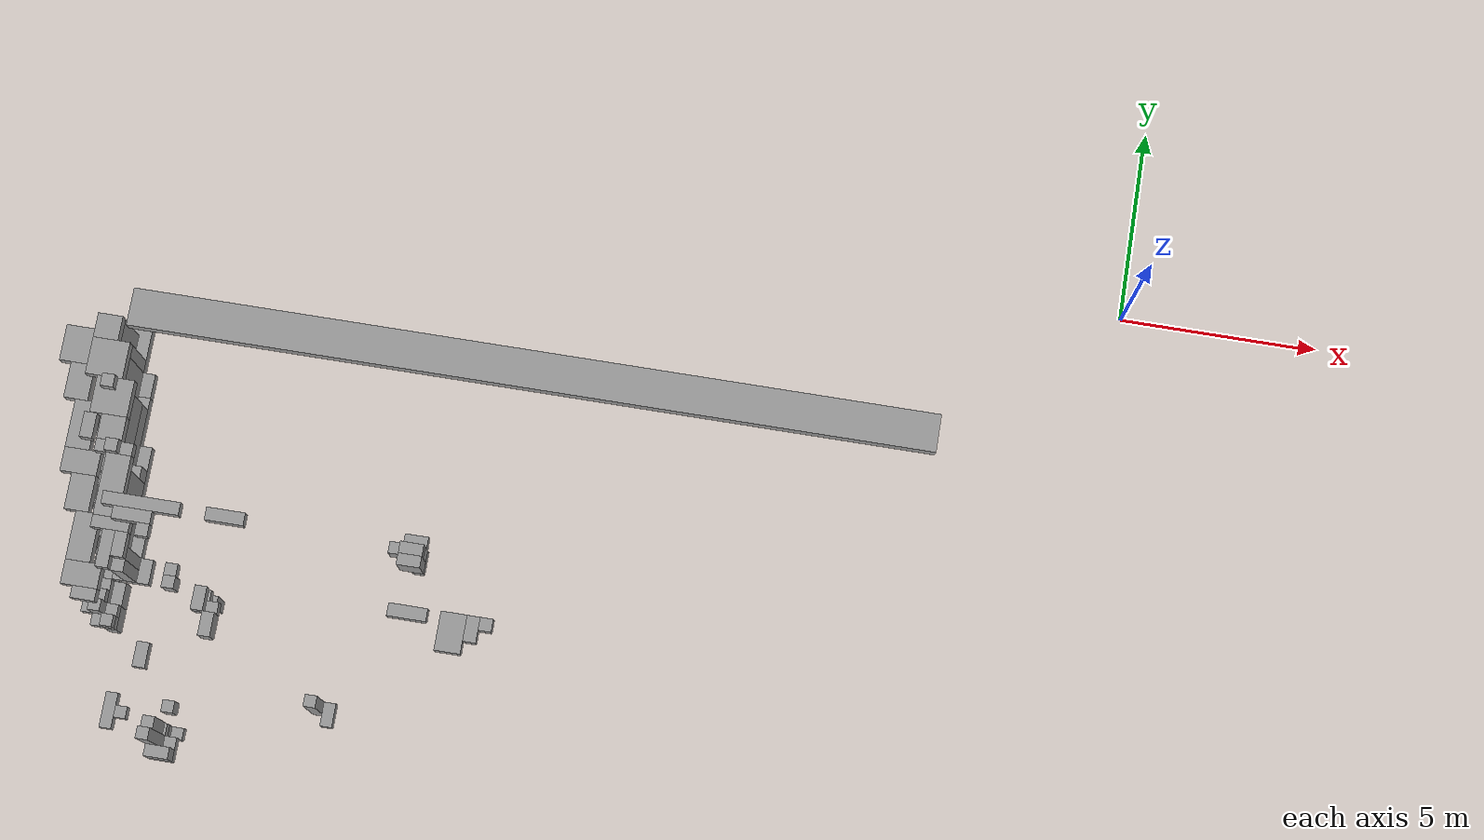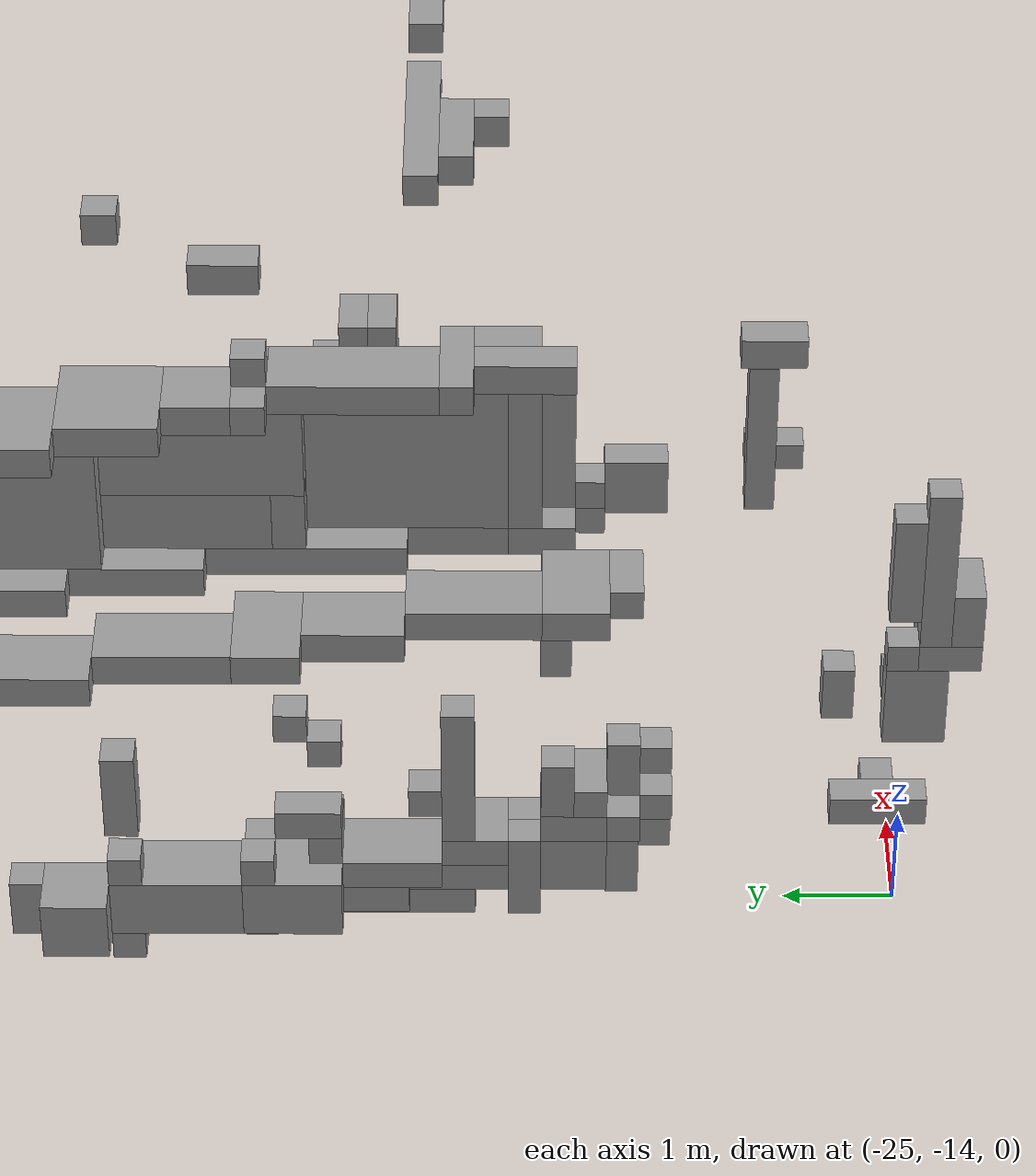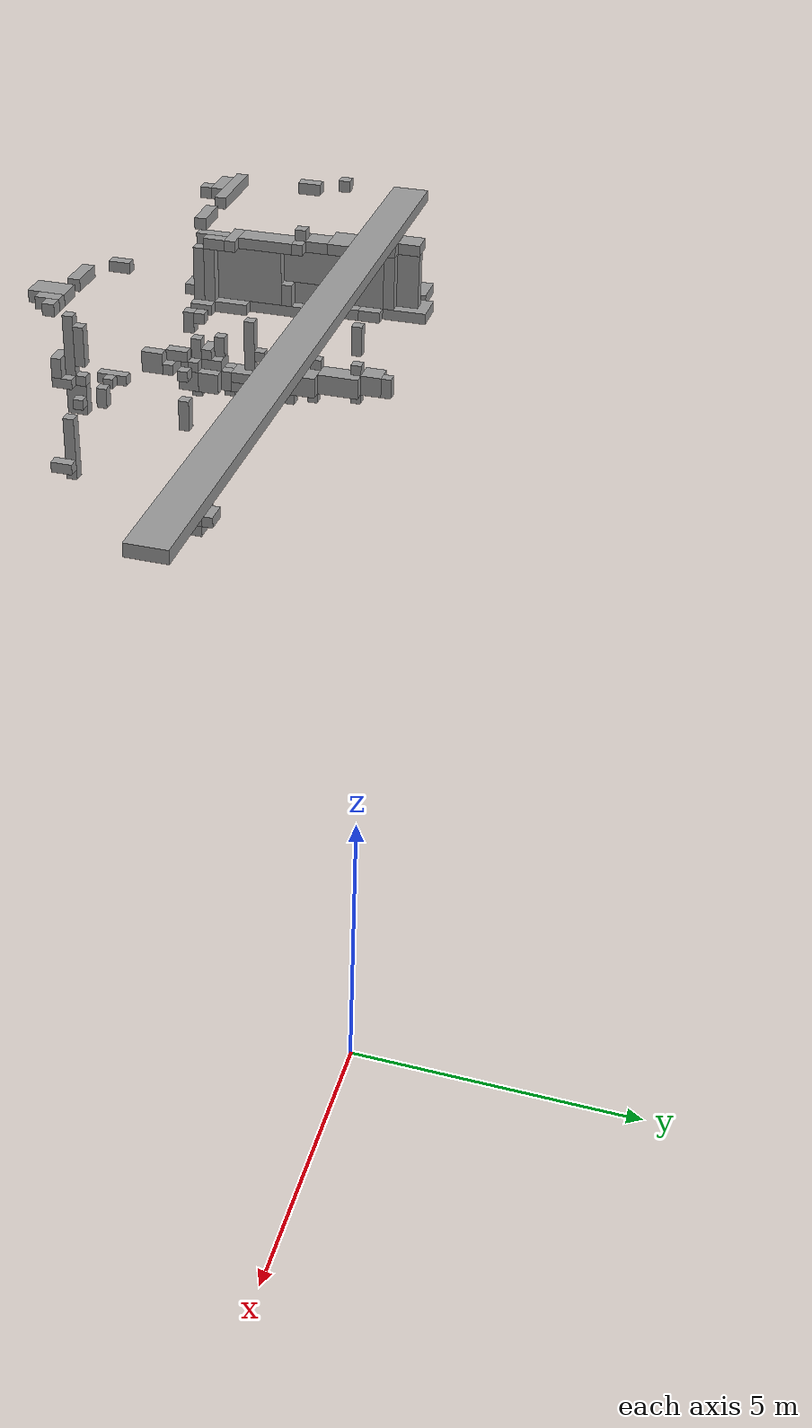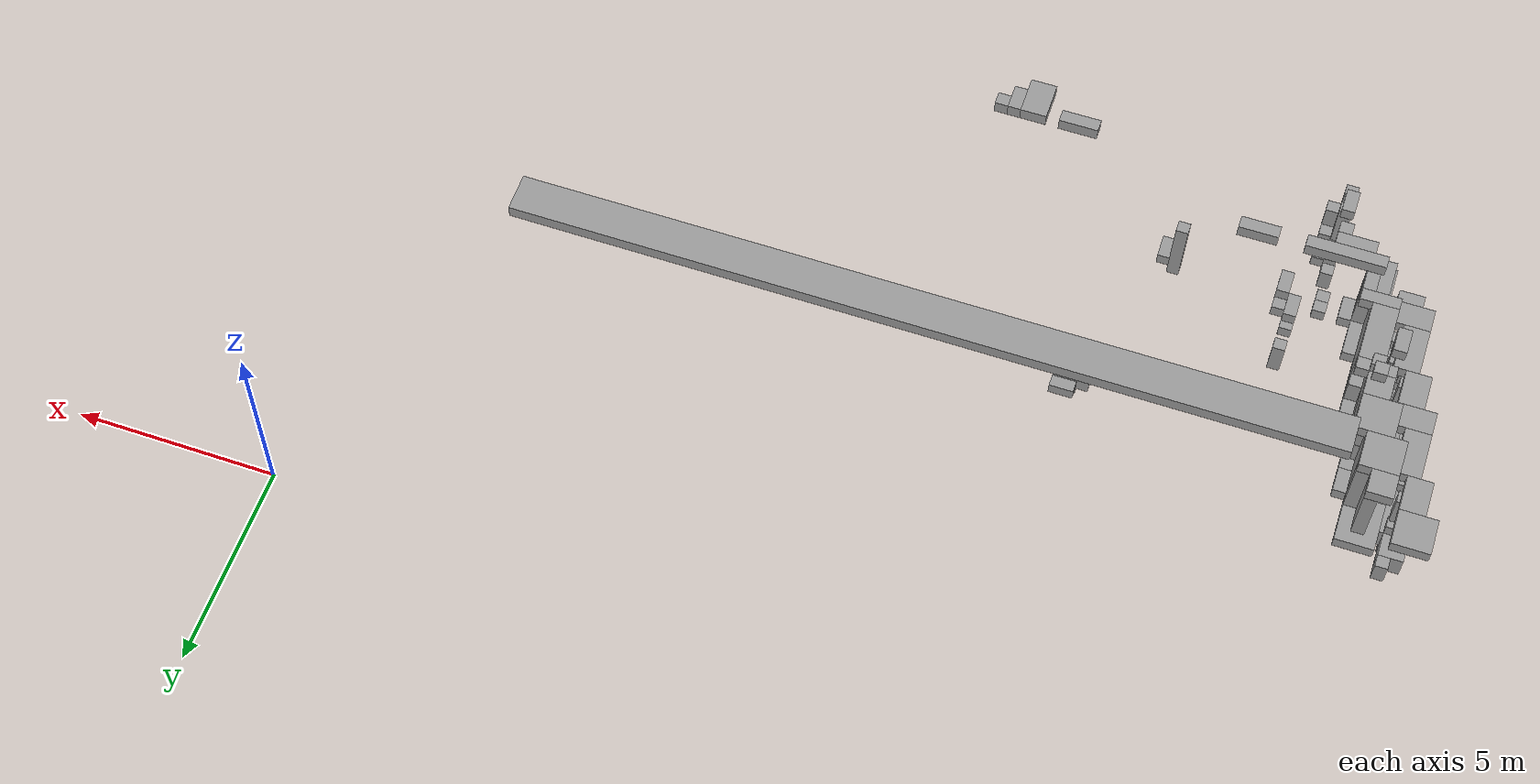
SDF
<sdf version="1.6">
 <world name="bt_world">
  <include><uri>model://sun</uri></include>
  <model name="obstacle_224">
   <static>true</static>
   <pose>-25.349999999999998 -5.55 2.85 0 0 0</pose>
   <link name="link">
    <collision name="collision">
     <geometry><box><size>0.8999999999999999 0.8999999999999999 0.3</size></box></geometry>
    </collision>
    <visual name="visual">
     <geometry><box><size>0.8999999999999999 0.8999999999999999 0.3</size></box></geometry>
     <material><ambient>0.5 0.5 0.5 1</ambient><diffuse>0.6 0.6 0.6 1</diffuse></material>
    </visual>
   </link>
  </model>
  <model name="obstacle_237">
   <static>true</static>
   <pose>-25.2 -6.6 0.0 0 0 0</pose>
   <link name="link">
    <collision name="collision"><geometry><box><size>0.6 0.6 0.6</size></box></geometry></collision>
    <visual name="visual">
     <geometry><box><size>0.6 0.6 0.6</size></box></geometry>
     <material><ambient>0.5 0.5 0.5 1</ambient><diffuse>0.6 0.6 0.6 1</diffuse></material>
    </visual>
   </link>
  </model>
  <model name="obstacle_238">
   <static>true</static>
   <pose>-25.2 -6.45 2.85 0 0 0</pose>
   <link name="link">
    <collision name="collision">
     <geometry><box><size>0.6 0.8999999999999999 0.3</size></box></geometry>
    </collision>
    <visual name="visual">
     <geometry><box><size>0.6 0.8999999999999999 0.3</size></box></geometry>
     <material><ambient>0.5 0.5 0.5 1</ambient><diffuse>0.6 0.6 0.6 1</diffuse></material>
    </visual>
   </link>
  </model>
  <model name="obstacle_248">
   <static>true</static>
   <pose>-24.75 -8.549999999999999 0.0 0 0 0</pose>
   <link name="link">
    <collision name="collision">
     <geometry><box><size>0.8999999999999999 0.8999999999999999 0.6</size></box></geometry>
    </collision>
    <visual name="visual">
     <geometry><box><size>0.8999999999999999 0.8999999999999999 0.6</size></box></geometry>
     <material><ambient>0.5 0.5 0.5 1</ambient><diffuse>0.6 0.6 0.6 1</diffuse></material>
    </visual>
   </link>
  </model>
  <model name="obstacle_249">
   <static>true</static>
   <pose>-24.75 -8.4 2.85 0 0 0</pose>
   <link name="link">
    <collision name="collision">
     <geometry><box><size>0.8999999999999999 0.6 0.3</size></box></geometry>
    </collision>
    <visual name="visual">
     <geometry><box><size>0.8999999999999999 0.6 0.3</size></box></geometry>
     <material><ambient>0.5 0.5 0.5 1</ambient><diffuse>0.6 0.6 0.6 1</diffuse></material>
    </visual>
   </link>
  </model>
  <model name="obstacle_250">
   <static>true</static>
   <pose>-25.05 -8.25 0.44999999999999996 0 0 0</pose>
   <link name="link">
    <collision name="collision"><geometry><box><size>0.3 0.3 0.3</size></box></geometry></collision>
    <visual name="visual">
     <geometry><box><size>0.3 0.3 0.3</size></box></geometry>
     <material><ambient>0.5 0.5 0.5 1</ambient><diffuse>0.6 0.6 0.6 1</diffuse></material>
    </visual>
   </link>
  </model>
  <model name="obstacle_251">
   <static>true</static>
   <pose>-24.9 -7.5 0.0 0 0 0</pose>
   <link name="link">
    <collision name="collision"><geometry><box><size>0.6 1.2 0.6</size></box></geometry></collision>
    <visual name="visual">
     <geometry><box><size>0.6 1.2 0.6</size></box></geometry>
     <material><ambient>0.5 0.5 0.5 1</ambient><diffuse>0.6 0.6 0.6 1</diffuse></material>
    </visual>
   </link>
  </model>
  <model name="obstacle_252">
   <static>true</static>
   <pose>-24.9 -7.5 2.85 0 0 0</pose>
   <link name="link">
    <collision name="collision"><geometry><box><size>0.6 1.2 0.3</size></box></geometry></collision>
    <visual name="visual">
     <geometry><box><size>0.6 1.2 0.3</size></box></geometry>
     <material><ambient>0.5 0.5 0.5 1</ambient><diffuse>0.6 0.6 0.6 1</diffuse></material>
    </visual>
   </link>
  </model>
  <model name="obstacle_253">
   <static>true</static>
   <pose>-25.05 -7.05 -0.44999999999999996 0 0 0</pose>
   <link name="link">
    <collision name="collision"><geometry><box><size>0.3 0.3 0.3</size></box></geometry></collision>
    <visual name="visual">
     <geometry><box><size>0.3 0.3 0.3</size></box></geometry>
     <material><ambient>0.5 0.5 0.5 1</ambient><diffuse>0.6 0.6 0.6 1</diffuse></material>
    </visual>
   </link>
  </model>
  <model name="obstacle_254">
   <static>true</static>
   <pose>-25.05 -7.05 0.44999999999999996 0 0 0</pose>
   <link name="link">
    <collision name="collision"><geometry><box><size>0.3 0.3 0.3</size></box></geometry></collision>
    <visual name="visual">
     <geometry><box><size>0.3 0.3 0.3</size></box></geometry>
     <material><ambient>0.5 0.5 0.5 1</ambient><diffuse>0.6 0.6 0.6 1</diffuse></material>
    </visual>
   </link>
  </model>
  <model name="obstacle_255">
   <static>true</static>
   <pose>-25.05 -7.05 1.3499999999999999 0 0 0</pose>
   <link name="link">
    <collision name="collision">
     <geometry><box><size>0.3 0.3 0.8999999999999999</size></box></geometry>
    </collision>
    <visual name="visual">
     <geometry><box><size>0.3 0.3 0.8999999999999999</size></box></geometry>
     <material><ambient>0.5 0.5 0.5 1</ambient><diffuse>0.6 0.6 0.6 1</diffuse></material>
    </visual>
   </link>
  </model>
  <model name="obstacle_256">
   <static>true</static>
   <pose>-25.05 -6.1499999999999995 0.0 0 0 0</pose>
   <link name="link">
    <collision name="collision"><geometry><box><size>0.3 0.3 0.6</size></box></geometry></collision>
    <visual name="visual">
     <geometry><box><size>0.3 0.3 0.6</size></box></geometry>
     <material><ambient>0.5 0.5 0.5 1</ambient><diffuse>0.6 0.6 0.6 1</diffuse></material>
    </visual>
   </link>
  </model>
  <model name="obstacle_283">
   <static>true</static>
   <pose>-24.599999999999998 -9.45 0.15 0 0 0</pose>
   <link name="link">
    <collision name="collision">
     <geometry><box><size>0.6 0.8999999999999999 0.3</size></box></geometry>
    </collision>
    <visual name="visual">
     <geometry><box><size>0.6 0.8999999999999999 0.3</size></box></geometry>
     <material><ambient>0.5 0.5 0.5 1</ambient><diffuse>0.6 0.6 0.6 1</diffuse></material>
    </visual>
   </link>
  </model>
  <model name="obstacle_284">
   <static>true</static>
   <pose>-24.599999999999998 -9.299999999999999 -0.15 0 0 0</pose>
   <link name="link">
    <collision name="collision"><geometry><box><size>0.6 0.6 0.3</size></box></geometry></collision>
    <visual name="visual">
     <geometry><box><size>0.6 0.6 0.3</size></box></geometry>
     <material><ambient>0.5 0.5 0.5 1</ambient><diffuse>0.6 0.6 0.6 1</diffuse></material>
    </visual>
   </link>
  </model>
  <model name="obstacle_285">
   <static>true</static>
   <pose>-24.599999999999998 -9.15 2.85 0 0 0</pose>
   <link name="link">
    <collision name="collision">
     <geometry><box><size>0.6 0.8999999999999999 0.3</size></box></geometry>
    </collision>
    <visual name="visual">
     <geometry><box><size>0.6 0.8999999999999999 0.3</size></box></geometry>
     <material><ambient>0.5 0.5 0.5 1</ambient><diffuse>0.6 0.6 0.6 1</diffuse></material>
    </visual>
   </link>
  </model>
  <model name="obstacle_286">
   <static>true</static>
   <pose>-24.599999999999998 -8.85 0.44999999999999996 0 0 0</pose>
   <link name="link">
    <collision name="collision"><geometry><box><size>0.6 0.3 0.3</size></box></geometry></collision>
    <visual name="visual">
     <geometry><box><size>0.6 0.3 0.3</size></box></geometry>
     <material><ambient>0.5 0.5 0.5 1</ambient><diffuse>0.6 0.6 0.6 1</diffuse></material>
    </visual>
   </link>
  </model>
  <model name="obstacle_287">
   <static>true</static>
   <pose>-24.75 -8.7 0.75 0 0 0</pose>
   <link name="link">
    <collision name="collision"><geometry><box><size>0.3 0.6 0.3</size></box></geometry></collision>
    <visual name="visual">
     <geometry><box><size>0.3 0.6 0.3</size></box></geometry>
     <material><ambient>0.5 0.5 0.5 1</ambient><diffuse>0.6 0.6 0.6 1</diffuse></material>
    </visual>
   </link>
  </model>
  <model name="obstacle_288">
   <static>true</static>
   <pose>-24.75 -8.25 -0.44999999999999996 0 0 0</pose>
   <link name="link">
    <collision name="collision"><geometry><box><size>0.3 0.3 0.3</size></box></geometry></collision>
    <visual name="visual">
     <geometry><box><size>0.3 0.3 0.3</size></box></geometry>
     <material><ambient>0.5 0.5 0.5 1</ambient><diffuse>0.6 0.6 0.6 1</diffuse></material>
    </visual>
   </link>
  </model>
  <model name="obstacle_304">
   <static>true</static>
   <pose>-24.15 -11.549999999999999 0.44999999999999996 0 0 0</pose>
   <link name="link">
    <collision name="collision">
     <geometry><box><size>0.8999999999999999 0.3 0.3</size></box></geometry>
    </collision>
    <visual name="visual">
     <geometry><box><size>0.8999999999999999 0.3 0.3</size></box></geometry>
     <material><ambient>0.5 0.5 0.5 1</ambient><diffuse>0.6 0.6 0.6 1</diffuse></material>
    </visual>
   </link>
  </model>
  <model name="obstacle_305">
   <static>true</static>
   <pose>-24.15 -11.1 0.0 0 0 0</pose>
   <link name="link">
    <collision name="collision">
     <geometry><box><size>0.8999999999999999 0.6 0.6</size></box></geometry>
    </collision>
    <visual name="visual">
     <geometry><box><size>0.8999999999999999 0.6 0.6</size></box></geometry>
     <material><ambient>0.5 0.5 0.5 1</ambient><diffuse>0.6 0.6 0.6 1</diffuse></material>
    </visual>
   </link>
  </model>
  <model name="obstacle_306">
   <static>true</static>
   <pose>-24.3 -11.1 0.44999999999999996 0 0 0</pose>
   <link name="link">
    <collision name="collision"><geometry><box><size>0.6 0.6 0.3</size></box></geometry></collision>
    <visual name="visual">
     <geometry><box><size>0.6 0.6 0.3</size></box></geometry>
     <material><ambient>0.5 0.5 0.5 1</ambient><diffuse>0.6 0.6 0.6 1</diffuse></material>
    </visual>
   </link>
  </model>
  <model name="obstacle_307">
   <static>true</static>
   <pose>-24.3 -11.25 0.75 0 0 0</pose>
   <link name="link">
    <collision name="collision"><geometry><box><size>0.6 0.3 0.3</size></box></geometry></collision>
    <visual name="visual">
     <geometry><box><size>0.6 0.3 0.3</size></box></geometry>
     <material><ambient>0.5 0.5 0.5 1</ambient><diffuse>0.6 0.6 0.6 1</diffuse></material>
    </visual>
   </link>
  </model>
  <model name="obstacle_308">
   <static>true</static>
   <pose>-24.15 -11.1 2.85 0 0 0</pose>
   <link name="link">
    <collision name="collision">
     <geometry><box><size>0.8999999999999999 0.6 0.3</size></box></geometry>
    </collision>
    <visual name="visual">
     <geometry><box><size>0.8999999999999999 0.6 0.3</size></box></geometry>
     <material><ambient>0.5 0.5 0.5 1</ambient><diffuse>0.6 0.6 0.6 1</diffuse></material>
    </visual>
   </link>
  </model>
  <model name="obstacle_309">
   <static>true</static>
   <pose>-24.45 -10.95 0.8999999999999999 0 0 0</pose>
   <link name="link">
    <collision name="collision"><geometry><box><size>0.3 0.3 0.6</size></box></geometry></collision>
    <visual name="visual">
     <geometry><box><size>0.3 0.3 0.6</size></box></geometry>
     <material><ambient>0.5 0.5 0.5 1</ambient><diffuse>0.6 0.6 0.6 1</diffuse></material>
    </visual>
   </link>
  </model>
  <model name="obstacle_310">
   <static>true</static>
   <pose>-24.45 -10.65 -0.15 0 0 0</pose>
   <link name="link">
    <collision name="collision">
     <geometry><box><size>0.3 0.3 0.8999999999999999</size></box></geometry>
    </collision>
    <visual name="visual">
     <geometry><box><size>0.3 0.3 0.8999999999999999</size></box></geometry>
     <material><ambient>0.5 0.5 0.5 1</ambient><diffuse>0.6 0.6 0.6 1</diffuse></material>
    </visual>
   </link>
  </model>
  <model name="obstacle_311">
   <static>true</static>
   <pose>-24.3 -10.2 2.85 0 0 0</pose>
   <link name="link">
    <collision name="collision"><geometry><box><size>0.6 1.2 0.3</size></box></geometry></collision>
    <visual name="visual">
     <geometry><box><size>0.6 1.2 0.3</size></box></geometry>
     <material><ambient>0.5 0.5 0.5 1</ambient><diffuse>0.6 0.6 0.6 1</diffuse></material>
    </visual>
   </link>
  </model>
  <model name="obstacle_312">
   <static>true</static>
   <pose>-24.3 -10.049999999999999 -0.15 0 0 0</pose>
   <link name="link">
    <collision name="collision">
     <geometry><box><size>0.6 0.8999999999999999 0.3</size></box></geometry>
    </collision>
    <visual name="visual">
     <geometry><box><size>0.6 0.8999999999999999 0.3</size></box></geometry>
     <material><ambient>0.5 0.5 0.5 1</ambient><diffuse>0.6 0.6 0.6 1</diffuse></material>
    </visual>
   </link>
  </model>
  <model name="obstacle_313">
   <static>true</static>
   <pose>-24.3 -10.2 0.15 0 0 0</pose>
   <link name="link">
    <collision name="collision"><geometry><box><size>0.6 0.6 0.3</size></box></geometry></collision>
    <visual name="visual">
     <geometry><box><size>0.6 0.6 0.3</size></box></geometry>
     <material><ambient>0.5 0.5 0.5 1</ambient><diffuse>0.6 0.6 0.6 1</diffuse></material>
    </visual>
   </link>
  </model>
  <model name="obstacle_314">
   <static>true</static>
   <pose>-24.45 -9.45 -0.44999999999999996 0 0 0</pose>
   <link name="link">
    <collision name="collision"><geometry><box><size>0.3 1.5 0.3</size></box></geometry></collision>
    <visual name="visual">
     <geometry><box><size>0.3 1.5 0.3</size></box></geometry>
     <material><ambient>0.5 0.5 0.5 1</ambient><diffuse>0.6 0.6 0.6 1</diffuse></material>
    </visual>
   </link>
  </model>
  <model name="obstacle_315">
   <static>true</static>
   <pose>-24.45 -10.049999999999999 1.05 0 0 0</pose>
   <link name="link">
    <collision name="collision"><geometry><box><size>0.3 0.3 1.5</size></box></geometry></collision>
    <visual name="visual">
     <geometry><box><size>0.3 0.3 1.5</size></box></geometry>
     <material><ambient>0.5 0.5 0.5 1</ambient><diffuse>0.6 0.6 0.6 1</diffuse></material>
    </visual>
   </link>
  </model>
  <model name="obstacle_316">
   <static>true</static>
   <pose>-24.45 -9.75 0.75 0 0 0</pose>
   <link name="link">
    <collision name="collision"><geometry><box><size>0.3 0.3 0.3</size></box></geometry></collision>
    <visual name="visual">
     <geometry><box><size>0.3 0.3 0.3</size></box></geometry>
     <material><ambient>0.5 0.5 0.5 1</ambient><diffuse>0.6 0.6 0.6 1</diffuse></material>
    </visual>
   </link>
  </model>
  <model name="obstacle_317">
   <static>true</static>
   <pose>-24.45 -8.85 1.3499999999999999 0 0 0</pose>
   <link name="link">
    <collision name="collision"><geometry><box><size>0.3 0.3 0.3</size></box></geometry></collision>
    <visual name="visual">
     <geometry><box><size>0.3 0.3 0.3</size></box></geometry>
     <material><ambient>0.5 0.5 0.5 1</ambient><diffuse>0.6 0.6 0.6 1</diffuse></material>
    </visual>
   </link>
  </model>
  <model name="obstacle_318">
   <static>true</static>
   <pose>-24.45 -8.549999999999999 1.65 0 0 0</pose>
   <link name="link">
    <collision name="collision"><geometry><box><size>0.3 0.3 0.3</size></box></geometry></collision>
    <visual name="visual">
     <geometry><box><size>0.3 0.3 0.3</size></box></geometry>
     <material><ambient>0.5 0.5 0.5 1</ambient><diffuse>0.6 0.6 0.6 1</diffuse></material>
    </visual>
   </link>
  </model>
  <model name="obstacle_319">
   <static>true</static>
   <pose>-24.15 -6.1499999999999995 4.6499999999999995 0 0 0</pose>
   <link name="link">
    <collision name="collision">
     <geometry><box><size>0.8999999999999999 0.8999999999999999 0.3</size></box></geometry>
    </collision>
    <visual name="visual">
     <geometry><box><size>0.8999999999999999 0.8999999999999999 0.3</size></box></geometry>
     <material><ambient>0.5 0.5 0.5 1</ambient><diffuse>0.6 0.6 0.6 1</diffuse></material>
    </visual>
   </link>
  </model>
  <model name="obstacle_320">
   <static>true</static>
   <pose>-24.15 -5.3999999999999995 2.85 0 0 0</pose>
   <link name="link">
    <collision name="collision">
     <geometry><box><size>0.8999999999999999 1.2 0.3</size></box></geometry>
    </collision>
    <visual name="visual">
     <geometry><box><size>0.8999999999999999 1.2 0.3</size></box></geometry>
     <material><ambient>0.5 0.5 0.5 1</ambient><diffuse>0.6 0.6 0.6 1</diffuse></material>
    </visual>
   </link>
  </model>
  <model name="obstacle_321">
   <static>true</static>
   <pose>-24.3 -5.3999999999999995 4.6499999999999995 0 0 0</pose>
   <link name="link">
    <collision name="collision"><geometry><box><size>0.6 0.6 0.3</size></box></geometry></collision>
    <visual name="visual">
     <geometry><box><size>0.6 0.6 0.3</size></box></geometry>
     <material><ambient>0.5 0.5 0.5 1</ambient><diffuse>0.6 0.6 0.6 1</diffuse></material>
    </visual>
   </link>
  </model>
  <model name="obstacle_370">
   <static>true</static>
   <pose>-24.0 -11.85 0.44999999999999996 0 0 0</pose>
   <link name="link">
    <collision name="collision"><geometry><box><size>0.6 0.3 0.3</size></box></geometry></collision>
    <visual name="visual">
     <geometry><box><size>0.6 0.3 0.3</size></box></geometry>
     <material><ambient>0.5 0.5 0.5 1</ambient><diffuse>0.6 0.6 0.6 1</diffuse></material>
    </visual>
   </link>
  </model>
  <model name="obstacle_371">
   <static>true</static>
   <pose>-24.15 -11.549999999999999 -0.15 0 0 0</pose>
   <link name="link">
    <collision name="collision">
     <geometry><box><size>0.3 0.3 0.8999999999999999</size></box></geometry>
    </collision>
    <visual name="visual">
     <geometry><box><size>0.3 0.3 0.8999999999999999</size></box></geometry>
     <material><ambient>0.5 0.5 0.5 1</ambient><diffuse>0.6 0.6 0.6 1</diffuse></material>
    </visual>
   </link>
  </model>
  <model name="obstacle_372">
   <static>true</static>
   <pose>-24.15 -11.549999999999999 0.8999999999999999 0 0 0</pose>
   <link name="link">
    <collision name="collision"><geometry><box><size>0.3 0.3 0.6</size></box></geometry></collision>
    <visual name="visual">
     <geometry><box><size>0.3 0.3 0.6</size></box></geometry>
     <material><ambient>0.5 0.5 0.5 1</ambient><diffuse>0.6 0.6 0.6 1</diffuse></material>
    </visual>
   </link>
  </model>
  <model name="obstacle_373">
   <static>true</static>
   <pose>-24.0 -11.549999999999999 2.85 0 0 0</pose>
   <link name="link">
    <collision name="collision"><geometry><box><size>0.6 0.3 0.3</size></box></geometry></collision>
    <visual name="visual">
     <geometry><box><size>0.6 0.3 0.3</size></box></geometry>
     <material><ambient>0.5 0.5 0.5 1</ambient><diffuse>0.6 0.6 0.6 1</diffuse></material>
    </visual>
   </link>
  </model>
  <model name="obstacle_374">
   <static>true</static>
   <pose>-24.15 -10.65 0.0 0 0 0</pose>
   <link name="link">
    <collision name="collision"><geometry><box><size>0.3 0.3 0.6</size></box></geometry></collision>
    <visual name="visual">
     <geometry><box><size>0.3 0.3 0.6</size></box></geometry>
     <material><ambient>0.5 0.5 0.5 1</ambient><diffuse>0.6 0.6 0.6 1</diffuse></material>
    </visual>
   </link>
  </model>
  <model name="obstacle_375">
   <static>true</static>
   <pose>-23.849999999999998 -7.05 4.6499999999999995 0 0 0</pose>
   <link name="link">
    <collision name="collision">
     <geometry><box><size>0.8999999999999999 0.8999999999999999 0.3</size></box></geometry>
    </collision>
    <visual name="visual">
     <geometry><box><size>0.8999999999999999 0.8999999999999999 0.3</size></box></geometry>
     <material><ambient>0.5 0.5 0.5 1</ambient><diffuse>0.6 0.6 0.6 1</diffuse></material>
    </visual>
   </link>
  </model>
  <model name="obstacle_376">
   <static>true</static>
   <pose>-23.849999999999998 -6.3 2.85 0 0 0</pose>
   <link name="link">
    <collision name="collision">
     <geometry><box><size>0.8999999999999999 0.6 0.3</size></box></geometry>
    </collision>
    <visual name="visual">
     <geometry><box><size>0.8999999999999999 0.6 0.3</size></box></geometry>
     <material><ambient>0.5 0.5 0.5 1</ambient><diffuse>0.6 0.6 0.6 1</diffuse></material>
    </visual>
   </link>
  </model>
  <model name="obstacle_377">
   <static>true</static>
   <pose>-24.0 -5.85 3.75 0 0 0</pose>
   <link name="link">
    <collision name="collision"><geometry><box><size>0.6 0.3 1.5</size></box></geometry></collision>
    <visual name="visual">
     <geometry><box><size>0.6 0.3 1.5</size></box></geometry>
     <material><ambient>0.5 0.5 0.5 1</ambient><diffuse>0.6 0.6 0.6 1</diffuse></material>
    </visual>
   </link>
  </model>
  <model name="obstacle_378">
   <static>true</static>
   <pose>-24.15 -5.3999999999999995 3.75 0 0 0</pose>
   <link name="link">
    <collision name="collision"><geometry><box><size>0.3 0.6 1.5</size></box></geometry></collision>
    <visual name="visual">
     <geometry><box><size>0.3 0.6 1.5</size></box></geometry>
     <material><ambient>0.5 0.5 0.5 1</ambient><diffuse>0.6 0.6 0.6 1</diffuse></material>
    </visual>
   </link>
  </model>
  <model name="obstacle_401">
   <static>true</static>
   <pose>-23.849999999999998 -11.7 0.0 0 0 0</pose>
   <link name="link">
    <collision name="collision"><geometry><box><size>0.3 0.6 0.6</size></box></geometry></collision>
    <visual name="visual">
     <geometry><box><size>0.3 0.6 0.6</size></box></geometry>
     <material><ambient>0.5 0.5 0.5 1</ambient><diffuse>0.6 0.6 0.6 1</diffuse></material>
    </visual>
   </link>
  </model>
  <model name="obstacle_402">
   <static>true</static>
   <pose>-23.849999999999998 -11.85 0.75 0 0 0</pose>
   <link name="link">
    <collision name="collision"><geometry><box><size>0.3 0.3 0.3</size></box></geometry></collision>
    <visual name="visual">
     <geometry><box><size>0.3 0.3 0.3</size></box></geometry>
     <material><ambient>0.5 0.5 0.5 1</ambient><diffuse>0.6 0.6 0.6 1</diffuse></material>
    </visual>
   </link>
  </model>
  <model name="obstacle_403">
   <static>true</static>
   <pose>-23.55 -8.25 4.6499999999999995 0 0 0</pose>
   <link name="link">
    <collision name="collision">
     <geometry><box><size>0.8999999999999999 0.3 0.3</size></box></geometry>
    </collision>
    <visual name="visual">
     <geometry><box><size>0.8999999999999999 0.3 0.3</size></box></geometry>
     <material><ambient>0.5 0.5 0.5 1</ambient><diffuse>0.6 0.6 0.6 1</diffuse></material>
    </visual>
   </link>
  </model>
  <model name="obstacle_404">
   <static>true</static>
   <pose>-23.849999999999998 -8.1 6.1499999999999995 0 0 0</pose>
   <link name="link">
    <collision name="collision"><geometry><box><size>0.3 0.6 0.3</size></box></geometry></collision>
    <visual name="visual">
     <geometry><box><size>0.3 0.6 0.3</size></box></geometry>
     <material><ambient>0.5 0.5 0.5 1</ambient><diffuse>0.6 0.6 0.6 1</diffuse></material>
    </visual>
   </link>
  </model>
  <model name="obstacle_405">
   <static>true</static>
   <pose>-23.7 -7.8 4.6499999999999995 0 0 0</pose>
   <link name="link">
    <collision name="collision"><geometry><box><size>0.6 0.6 0.3</size></box></geometry></collision>
    <visual name="visual">
     <geometry><box><size>0.6 0.6 0.3</size></box></geometry>
     <material><ambient>0.5 0.5 0.5 1</ambient><diffuse>0.6 0.6 0.6 1</diffuse></material>
    </visual>
   </link>
  </model>
  <model name="obstacle_406">
   <static>true</static>
   <pose>-23.7 -7.199999999999999 2.85 0 0 0</pose>
   <link name="link">
    <collision name="collision"><geometry><box><size>0.6 1.2 0.3</size></box></geometry></collision>
    <visual name="visual">
     <geometry><box><size>0.6 1.2 0.3</size></box></geometry>
     <material><ambient>0.5 0.5 0.5 1</ambient><diffuse>0.6 0.6 0.6 1</diffuse></material>
    </visual>
   </link>
  </model>
  <model name="obstacle_407">
   <static>true</static>
   <pose>-23.849999999999998 -6.45 3.75 0 0 0</pose>
   <link name="link">
    <collision name="collision">
     <geometry><box><size>0.3 0.8999999999999999 1.5</size></box></geometry>
    </collision>
    <visual name="visual">
     <geometry><box><size>0.3 0.8999999999999999 1.5</size></box></geometry>
     <material><ambient>0.5 0.5 0.5 1</ambient><diffuse>0.6 0.6 0.6 1</diffuse></material>
    </visual>
   </link>
  </model>
  <model name="obstacle_424">
   <static>true</static>
   <pose>-23.55 -13.95 -0.15 0 0 0</pose>
   <link name="link">
    <collision name="collision">
     <geometry><box><size>0.3 0.8999999999999999 0.3</size></box></geometry>
    </collision>
    <visual name="visual">
     <geometry><box><size>0.3 0.8999999999999999 0.3</size></box></geometry>
     <material><ambient>0.5 0.5 0.5 1</ambient><diffuse>0.6 0.6 0.6 1</diffuse></material>
    </visual>
   </link>
  </model>
  <model name="obstacle_425">
   <static>true</static>
   <pose>-23.25 -10.049999999999999 4.6499999999999995 0 0 0</pose>
   <link name="link">
    <collision name="collision">
     <geometry><box><size>0.8999999999999999 0.3 0.3</size></box></geometry>
    </collision>
    <visual name="visual">
     <geometry><box><size>0.8999999999999999 0.3 0.3</size></box></geometry>
     <material><ambient>0.5 0.5 0.5 1</ambient><diffuse>0.6 0.6 0.6 1</diffuse></material>
    </visual>
   </link>
  </model>
  <model name="obstacle_426">
   <static>true</static>
   <pose>-23.4 -9.15 4.6499999999999995 0 0 0</pose>
   <link name="link">
    <collision name="collision"><geometry><box><size>0.6 1.5 0.3</size></box></geometry></collision>
    <visual name="visual">
     <geometry><box><size>0.6 1.5 0.3</size></box></geometry>
     <material><ambient>0.5 0.5 0.5 1</ambient><diffuse>0.6 0.6 0.6 1</diffuse></material>
    </visual>
   </link>
  </model>
  <model name="obstacle_427">
   <static>true</static>
   <pose>-23.4 -8.7 2.85 0 0 0</pose>
   <link name="link">
    <collision name="collision">
     <geometry><box><size>0.6 1.7999999999999998 0.3</size></box></geometry>
    </collision>
    <visual name="visual">
     <geometry><box><size>0.6 1.7999999999999998 0.3</size></box></geometry>
     <material><ambient>0.5 0.5 0.5 1</ambient><diffuse>0.6 0.6 0.6 1</diffuse></material>
    </visual>
   </link>
  </model>
  <model name="obstacle_428">
   <static>true</static>
   <pose>-23.4 -8.549999999999999 3.3 0 0 0</pose>
   <link name="link">
    <collision name="collision"><geometry><box><size>0.6 0.3 0.6</size></box></geometry></collision>
    <visual name="visual">
     <geometry><box><size>0.6 0.3 0.6</size></box></geometry>
     <material><ambient>0.5 0.5 0.5 1</ambient><diffuse>0.6 0.6 0.6 1</diffuse></material>
    </visual>
   </link>
  </model>
  <model name="obstacle_429">
   <static>true</static>
   <pose>-23.55 -7.8 4.05 0 0 0</pose>
   <link name="link">
    <collision name="collision">
     <geometry><box><size>0.3 1.7999999999999998 0.8999999999999999</size></box></geometry>
    </collision>
    <visual name="visual">
     <geometry><box><size>0.3 1.7999999999999998 0.8999999999999999</size></box></geometry>
     <material><ambient>0.5 0.5 0.5 1</ambient><diffuse>0.6 0.6 0.6 1</diffuse></material>
    </visual>
   </link>
  </model>
  <model name="obstacle_430">
   <static>true</static>
   <pose>-23.55 -7.6499999999999995 3.3 0 0 0</pose>
   <link name="link">
    <collision name="collision"><geometry><box><size>0.3 1.5 0.6</size></box></geometry></collision>
    <visual name="visual">
     <geometry><box><size>0.3 1.5 0.6</size></box></geometry>
     <material><ambient>0.5 0.5 0.5 1</ambient><diffuse>0.6 0.6 0.6 1</diffuse></material>
    </visual>
   </link>
  </model>
  <model name="obstacle_431">
   <static>true</static>
   <pose>-23.55 -8.25 4.95 0 0 0</pose>
   <link name="link">
    <collision name="collision"><geometry><box><size>0.3 0.3 0.3</size></box></geometry></collision>
    <visual name="visual">
     <geometry><box><size>0.3 0.3 0.3</size></box></geometry>
     <material><ambient>0.5 0.5 0.5 1</ambient><diffuse>0.6 0.6 0.6 1</diffuse></material>
    </visual>
   </link>
  </model>
  <model name="obstacle_432">
   <static>true</static>
   <pose>-23.55 -7.05 6.45 0 0 0</pose>
   <link name="link">
    <collision name="collision"><geometry><box><size>0.3 0.3 0.3</size></box></geometry></collision>
    <visual name="visual">
     <geometry><box><size>0.3 0.3 0.3</size></box></geometry>
     <material><ambient>0.5 0.5 0.5 1</ambient><diffuse>0.6 0.6 0.6 1</diffuse></material>
    </visual>
   </link>
  </model>
  <model name="obstacle_468">
   <static>true</static>
   <pose>-23.25 -13.95 -0.15 0 0 0</pose>
   <link name="link">
    <collision name="collision"><geometry><box><size>0.3 0.3 0.3</size></box></geometry></collision>
    <visual name="visual">
     <geometry><box><size>0.3 0.3 0.3</size></box></geometry>
     <material><ambient>0.5 0.5 0.5 1</ambient><diffuse>0.6 0.6 0.6 1</diffuse></material>
    </visual>
   </link>
  </model>
  <model name="obstacle_469">
   <static>true</static>
   <pose>-22.95 -10.799999999999999 2.85 0 0 0</pose>
   <link name="link">
    <collision name="collision">
     <geometry><box><size>0.8999999999999999 0.6 0.3</size></box></geometry>
    </collision>
    <visual name="visual">
     <geometry><box><size>0.8999999999999999 0.6 0.3</size></box></geometry>
     <material><ambient>0.5 0.5 0.5 1</ambient><diffuse>0.6 0.6 0.6 1</diffuse></material>
    </visual>
   </link>
  </model>
  <model name="obstacle_470">
   <static>true</static>
   <pose>-23.25 -10.65 4.6499999999999995 0 0 0</pose>
   <link name="link">
    <collision name="collision">
     <geometry><box><size>0.3 0.8999999999999999 0.3</size></box></geometry>
    </collision>
    <visual name="visual">
     <geometry><box><size>0.3 0.8999999999999999 0.3</size></box></geometry>
     <material><ambient>0.5 0.5 0.5 1</ambient><diffuse>0.6 0.6 0.6 1</diffuse></material>
    </visual>
   </link>
  </model>
  <model name="obstacle_471">
   <static>true</static>
   <pose>-23.099999999999998 -10.65 3.75 0 0 0</pose>
   <link name="link">
    <collision name="collision"><geometry><box><size>0.6 0.3 1.5</size></box></geometry></collision>
    <visual name="visual">
     <geometry><box><size>0.6 0.3 1.5</size></box></geometry>
     <material><ambient>0.5 0.5 0.5 1</ambient><diffuse>0.6 0.6 0.6 1</diffuse></material>
    </visual>
   </link>
  </model>
  <model name="obstacle_472">
   <static>true</static>
   <pose>-23.099999999999998 -10.049999999999999 2.85 0 0 0</pose>
   <link name="link">
    <collision name="collision">
     <geometry><box><size>0.6 0.8999999999999999 0.3</size></box></geometry>
    </collision>
    <visual name="visual">
     <geometry><box><size>0.6 0.8999999999999999 0.3</size></box></geometry>
     <material><ambient>0.5 0.5 0.5 1</ambient><diffuse>0.6 0.6 0.6 1</diffuse></material>
    </visual>
   </link>
  </model>
  <model name="obstacle_473">
   <static>true</static>
   <pose>-23.25 -9.6 3.75 0 0 0</pose>
   <link name="link">
    <collision name="collision">
     <geometry><box><size>0.3 1.7999999999999998 1.5</size></box></geometry>
    </collision>
    <visual name="visual">
     <geometry><box><size>0.3 1.7999999999999998 1.5</size></box></geometry>
     <material><ambient>0.5 0.5 0.5 1</ambient><diffuse>0.6 0.6 0.6 1</diffuse></material>
    </visual>
   </link>
  </model>
  <model name="obstacle_477">
   <static>true</static>
   <pose>-13.95 -5.25 6.45 0 0 0</pose>
   <link name="link">
    <collision name="collision">
     <geometry><box><size>18.9 0.8999999999999999 0.3</size></box></geometry>
    </collision>
    <visual name="visual">
     <geometry><box><size>18.9 0.8999999999999999 0.3</size></box></geometry>
     <material><ambient>0.5 0.5 0.5 1</ambient><diffuse>0.6 0.6 0.6 1</diffuse></material>
    </visual>
   </link>
  </model>
  <model name="obstacle_505">
   <static>true</static>
   <pose>-22.95 -10.95 3.75 0 0 0</pose>
   <link name="link">
    <collision name="collision"><geometry><box><size>0.3 0.3 1.5</size></box></geometry></collision>
    <visual name="visual">
     <geometry><box><size>0.3 0.3 1.5</size></box></geometry>
     <material><ambient>0.5 0.5 0.5 1</ambient><diffuse>0.6 0.6 0.6 1</diffuse></material>
    </visual>
   </link>
  </model>
  <model name="obstacle_506">
   <static>true</static>
   <pose>-22.95 -10.5 4.6499999999999995 0 0 0</pose>
   <link name="link">
    <collision name="collision"><geometry><box><size>0.3 0.6 0.3</size></box></geometry></collision>
    <visual name="visual">
     <geometry><box><size>0.3 0.6 0.3</size></box></geometry>
     <material><ambient>0.5 0.5 0.5 1</ambient><diffuse>0.6 0.6 0.6 1</diffuse></material>
    </visual>
   </link>
  </model>
  <model name="obstacle_507">
   <static>true</static>
   <pose>-22.2 -9.75 6.45 0 0 0</pose>
   <link name="link">
    <collision name="collision">
     <geometry><box><size>1.7999999999999998 0.3 0.3</size></box></geometry>
    </collision>
    <visual name="visual">
     <geometry><box><size>1.7999999999999998 0.3 0.3</size></box></geometry>
     <material><ambient>0.5 0.5 0.5 1</ambient><diffuse>0.6 0.6 0.6 1</diffuse></material>
    </visual>
   </link>
  </model>
  <model name="obstacle_533">
   <static>true</static>
   <pose>-22.349999999999998 -10.049999999999999 6.45 0 0 0</pose>
   <link name="link">
    <collision name="collision">
     <geometry><box><size>0.8999999999999999 0.3 0.3</size></box></geometry>
    </collision>
    <visual name="visual">
     <geometry><box><size>0.8999999999999999 0.3 0.3</size></box></geometry>
     <material><ambient>0.5 0.5 0.5 1</ambient><diffuse>0.6 0.6 0.6 1</diffuse></material>
    </visual>
   </link>
  </model>
  <model name="obstacle_604">
   <static>true</static>
   <pose>-21.9 -14.7 0.44999999999999996 0 0 0</pose>
   <link name="link">
    <collision name="collision"><geometry><box><size>0.6 0.6 0.3</size></box></geometry></collision>
    <visual name="visual">
     <geometry><box><size>0.6 0.6 0.3</size></box></geometry>
     <material><ambient>0.5 0.5 0.5 1</ambient><diffuse>0.6 0.6 0.6 1</diffuse></material>
    </visual>
   </link>
  </model>
  <model name="obstacle_605">
   <static>true</static>
   <pose>-21.9 -14.85 0.8999999999999999 0 0 0</pose>
   <link name="link">
    <collision name="collision"><geometry><box><size>0.6 0.3 0.6</size></box></geometry></collision>
    <visual name="visual">
     <geometry><box><size>0.6 0.3 0.6</size></box></geometry>
     <material><ambient>0.5 0.5 0.5 1</ambient><diffuse>0.6 0.6 0.6 1</diffuse></material>
    </visual>
   </link>
  </model>
  <model name="obstacle_606">
   <static>true</static>
   <pose>-22.05 -14.399999999999999 -0.15 0 0 0</pose>
   <link name="link">
    <collision name="collision">
     <geometry><box><size>0.3 0.6 0.8999999999999999</size></box></geometry>
    </collision>
    <visual name="visual">
     <geometry><box><size>0.3 0.6 0.8999999999999999</size></box></geometry>
     <material><ambient>0.5 0.5 0.5 1</ambient><diffuse>0.6 0.6 0.6 1</diffuse></material>
    </visual>
   </link>
  </model>
  <model name="obstacle_607">
   <static>true</static>
   <pose>-22.05 -14.549999999999999 1.5 0 0 0</pose>
   <link name="link">
    <collision name="collision">
     <geometry><box><size>0.3 0.3 1.7999999999999998</size></box></geometry>
    </collision>
    <visual name="visual">
     <geometry><box><size>0.3 0.3 1.7999999999999998</size></box></geometry>
     <material><ambient>0.5 0.5 0.5 1</ambient><diffuse>0.6 0.6 0.6 1</diffuse></material>
    </visual>
   </link>
  </model>
  <model name="obstacle_608">
   <static>true</static>
   <pose>-22.05 -14.25 0.44999999999999996 0 0 0</pose>
   <link name="link">
    <collision name="collision"><geometry><box><size>0.3 0.3 0.3</size></box></geometry></collision>
    <visual name="visual">
     <geometry><box><size>0.3 0.3 0.3</size></box></geometry>
     <material><ambient>0.5 0.5 0.5 1</ambient><diffuse>0.6 0.6 0.6 1</diffuse></material>
    </visual>
   </link>
  </model>
  <model name="obstacle_609">
   <static>true</static>
   <pose>-22.05 -14.25 1.5 0 0 0</pose>
   <link name="link">
    <collision name="collision"><geometry><box><size>0.3 0.3 1.2</size></box></geometry></collision>
    <visual name="visual">
     <geometry><box><size>0.3 0.3 1.2</size></box></geometry>
     <material><ambient>0.5 0.5 0.5 1</ambient><diffuse>0.6 0.6 0.6 1</diffuse></material>
    </visual>
   </link>
  </model>
  <model name="obstacle_610">
   <static>true</static>
   <pose>-22.05 -13.65 0.0 0 0 0</pose>
   <link name="link">
    <collision name="collision"><geometry><box><size>0.3 0.3 0.6</size></box></geometry></collision>
    <visual name="visual">
     <geometry><box><size>0.3 0.3 0.6</size></box></geometry>
     <material><ambient>0.5 0.5 0.5 1</ambient><diffuse>0.6 0.6 0.6 1</diffuse></material>
    </visual>
   </link>
  </model>
  <model name="obstacle_611">
   <static>true</static>
   <pose>-22.05 -12.9 4.05 0 0 0</pose>
   <link name="link">
    <collision name="collision"><geometry><box><size>0.3 0.6 0.3</size></box></geometry></collision>
    <visual name="visual">
     <geometry><box><size>0.3 0.6 0.3</size></box></geometry>
     <material><ambient>0.5 0.5 0.5 1</ambient><diffuse>0.6 0.6 0.6 1</diffuse></material>
    </visual>
   </link>
  </model>
  <model name="obstacle_612">
   <static>true</static>
   <pose>-22.05 -10.95 2.6999999999999997 0 0 0</pose>
   <link name="link">
    <collision name="collision"><geometry><box><size>0.3 0.3 0.6</size></box></geometry></collision>
    <visual name="visual">
     <geometry><box><size>0.3 0.3 0.6</size></box></geometry>
     <material><ambient>0.5 0.5 0.5 1</ambient><diffuse>0.6 0.6 0.6 1</diffuse></material>
    </visual>
   </link>
  </model>
  <model name="obstacle_613">
   <static>true</static>
   <pose>-22.05 -10.65 2.85 0 0 0</pose>
   <link name="link">
    <collision name="collision"><geometry><box><size>0.3 0.3 0.3</size></box></geometry></collision>
    <visual name="visual">
     <geometry><box><size>0.3 0.3 0.3</size></box></geometry>
     <material><ambient>0.5 0.5 0.5 1</ambient><diffuse>0.6 0.6 0.6 1</diffuse></material>
    </visual>
   </link>
  </model>
  <model name="obstacle_614">
   <static>true</static>
   <pose>-22.05 -10.35 6.45 0 0 0</pose>
   <link name="link">
    <collision name="collision"><geometry><box><size>0.3 0.3 0.3</size></box></geometry></collision>
    <visual name="visual">
     <geometry><box><size>0.3 0.3 0.3</size></box></geometry>
     <material><ambient>0.5 0.5 0.5 1</ambient><diffuse>0.6 0.6 0.6 1</diffuse></material>
    </visual>
   </link>
  </model>
  <model name="obstacle_667">
   <static>true</static>
   <pose>-21.75 -14.25 -0.15 0 0 0</pose>
   <link name="link">
    <collision name="collision"><geometry><box><size>0.3 0.3 0.3</size></box></geometry></collision>
    <visual name="visual">
     <geometry><box><size>0.3 0.3 0.3</size></box></geometry>
     <material><ambient>0.5 0.5 0.5 1</ambient><diffuse>0.6 0.6 0.6 1</diffuse></material>
    </visual>
   </link>
  </model>
  <model name="obstacle_706">
   <static>true</static>
   <pose>-21.3 -11.25 1.65 0 0 0</pose>
   <link name="link">
    <collision name="collision"><geometry><box><size>0.6 0.3 0.3</size></box></geometry></collision>
    <visual name="visual">
     <geometry><box><size>0.6 0.3 0.3</size></box></geometry>
     <material><ambient>0.5 0.5 0.5 1</ambient><diffuse>0.6 0.6 0.6 1</diffuse></material>
    </visual>
   </link>
  </model>
  <model name="obstacle_707">
   <static>true</static>
   <pose>-21.45 -11.1 1.95 0 0 0</pose>
   <link name="link">
    <collision name="collision"><geometry><box><size>0.3 0.6 0.3</size></box></geometry></collision>
    <visual name="visual">
     <geometry><box><size>0.3 0.6 0.3</size></box></geometry>
     <material><ambient>0.5 0.5 0.5 1</ambient><diffuse>0.6 0.6 0.6 1</diffuse></material>
    </visual>
   </link>
  </model>
  <model name="obstacle_708">
   <static>true</static>
   <pose>-21.45 -10.95 0.15 0 0 0</pose>
   <link name="link">
    <collision name="collision">
     <geometry><box><size>0.3 0.3 0.8999999999999999</size></box></geometry>
    </collision>
    <visual name="visual">
     <geometry><box><size>0.3 0.3 0.8999999999999999</size></box></geometry>
     <material><ambient>0.5 0.5 0.5 1</ambient><diffuse>0.6 0.6 0.6 1</diffuse></material>
    </visual>
   </link>
  </model>
  <model name="obstacle_709">
   <static>true</static>
   <pose>-21.45 -10.95 1.3499999999999999 0 0 0</pose>
   <link name="link">
    <collision name="collision"><geometry><box><size>0.3 0.3 0.3</size></box></geometry></collision>
    <visual name="visual">
     <geometry><box><size>0.3 0.3 0.3</size></box></geometry>
     <material><ambient>0.5 0.5 0.5 1</ambient><diffuse>0.6 0.6 0.6 1</diffuse></material>
    </visual>
   </link>
  </model>
  <model name="obstacle_750">
   <static>true</static>
   <pose>-21.15 -11.7 1.7999999999999998 0 0 0</pose>
   <link name="link">
    <collision name="collision"><geometry><box><size>0.3 0.6 0.6</size></box></geometry></collision>
    <visual name="visual">
     <geometry><box><size>0.3 0.6 0.6</size></box></geometry>
     <material><ambient>0.5 0.5 0.5 1</ambient><diffuse>0.6 0.6 0.6 1</diffuse></material>
    </visual>
   </link>
  </model>
  <model name="obstacle_855">
   <static>true</static>
   <pose>-20.25 -9.75 6.45 0 0 0</pose>
   <link name="link">
    <collision name="collision">
     <geometry><box><size>0.8999999999999999 0.3 0.3</size></box></geometry>
    </collision>
    <visual name="visual">
     <geometry><box><size>0.8999999999999999 0.3 0.3</size></box></geometry>
     <material><ambient>0.5 0.5 0.5 1</ambient><diffuse>0.6 0.6 0.6 1</diffuse></material>
    </visual>
   </link>
  </model>
  <model name="obstacle_1033">
   <static>true</static>
   <pose>-18.45 -13.049999999999999 0.3 0 0 0</pose>
   <link name="link">
    <collision name="collision">
     <geometry><box><size>0.3 0.3 1.7999999999999998</size></box></geometry>
    </collision>
    <visual name="visual">
     <geometry><box><size>0.3 0.3 1.7999999999999998</size></box></geometry>
     <material><ambient>0.5 0.5 0.5 1</ambient><diffuse>0.6 0.6 0.6 1</diffuse></material>
    </visual>
   </link>
  </model>
  <model name="obstacle_1056">
   <static>true</static>
   <pose>-18.15 -13.2 -0.15 0 0 0</pose>
   <link name="link">
    <collision name="collision"><geometry><box><size>0.3 0.6 0.3</size></box></geometry></collision>
    <visual name="visual">
     <geometry><box><size>0.3 0.6 0.3</size></box></geometry>
     <material><ambient>0.5 0.5 0.5 1</ambient><diffuse>0.6 0.6 0.6 1</diffuse></material>
    </visual>
   </link>
  </model>
  <model name="obstacle_1106">
   <static>true</static>
   <pose>-16.95 -8.85 0.0 0 0 0</pose>
   <link name="link">
    <collision name="collision">
     <geometry><box><size>0.8999999999999999 0.3 0.6</size></box></geometry>
    </collision>
    <visual name="visual">
     <geometry><box><size>0.8999999999999999 0.3 0.6</size></box></geometry>
     <material><ambient>0.5 0.5 0.5 1</ambient><diffuse>0.6 0.6 0.6 1</diffuse></material>
    </visual>
   </link>
  </model>
  <model name="obstacle_1146">
   <static>true</static>
   <pose>-16.8 -9.15 0.15 0 0 0</pose>
   <link name="link">
    <collision name="collision">
     <geometry><box><size>0.6 0.3 0.8999999999999999</size></box></geometry>
    </collision>
    <visual name="visual">
     <geometry><box><size>0.6 0.3 0.8999999999999999</size></box></geometry>
     <material><ambient>0.5 0.5 0.5 1</ambient><diffuse>0.6 0.6 0.6 1</diffuse></material>
    </visual>
   </link>
  </model>
  <model name="obstacle_1147">
   <static>true</static>
   <pose>-16.8 -8.85 -0.44999999999999996 0 0 0</pose>
   <link name="link">
    <collision name="collision"><geometry><box><size>0.6 0.3 0.3</size></box></geometry></collision>
    <visual name="visual">
     <geometry><box><size>0.6 0.3 0.3</size></box></geometry>
     <material><ambient>0.5 0.5 0.5 1</ambient><diffuse>0.6 0.6 0.6 1</diffuse></material>
    </visual>
   </link>
  </model>
  <model name="obstacle_1148">
   <static>true</static>
   <pose>-16.8 -8.85 0.44999999999999996 0 0 0</pose>
   <link name="link">
    <collision name="collision"><geometry><box><size>0.6 0.3 0.3</size></box></geometry></collision>
    <visual name="visual">
     <geometry><box><size>0.6 0.3 0.3</size></box></geometry>
     <material><ambient>0.5 0.5 0.5 1</ambient><diffuse>0.6 0.6 0.6 1</diffuse></material>
    </visual>
   </link>
  </model>
  <model name="obstacle_1149">
   <static>true</static>
   <pose>-16.8 -8.549999999999999 -0.15 0 0 0</pose>
   <link name="link">
    <collision name="collision"><geometry><box><size>0.6 0.3 0.3</size></box></geometry></collision>
    <visual name="visual">
     <geometry><box><size>0.6 0.3 0.3</size></box></geometry>
     <material><ambient>0.5 0.5 0.5 1</ambient><diffuse>0.6 0.6 0.6 1</diffuse></material>
    </visual>
   </link>
  </model>
  <model name="obstacle_1186">
   <static>true</static>
   <pose>-16.65 -9.15 -0.44999999999999996 0 0 0</pose>
   <link name="link">
    <collision name="collision"><geometry><box><size>0.3 0.3 0.3</size></box></geometry></collision>
    <visual name="visual">
     <geometry><box><size>0.3 0.3 0.3</size></box></geometry>
     <material><ambient>0.5 0.5 0.5 1</ambient><diffuse>0.6 0.6 0.6 1</diffuse></material>
    </visual>
   </link>
  </model>
  <model name="obstacle_1221">
   <static>true</static>
   <pose>-15.75 -11.25 6.45 0 0 0</pose>
   <link name="link">
    <collision name="collision">
     <geometry><box><size>0.8999999999999999 0.3 0.3</size></box></geometry>
    </collision>
    <visual name="visual">
     <geometry><box><size>0.8999999999999999 0.3 0.3</size></box></geometry>
     <material><ambient>0.5 0.5 0.5 1</ambient><diffuse>0.6 0.6 0.6 1</diffuse></material>
    </visual>
   </link>
  </model>
  <model name="obstacle_1272">
   <static>true</static>
   <pose>-14.7 -11.549999999999999 6.45 0 0 0</pose>
   <link name="link">
    <collision name="collision">
     <geometry><box><size>0.6 0.8999999999999999 0.3</size></box></geometry>
    </collision>
    <visual name="visual">
     <geometry><box><size>0.6 0.8999999999999999 0.3</size></box></geometry>
     <material><ambient>0.5 0.5 0.5 1</ambient><diffuse>0.6 0.6 0.6 1</diffuse></material>
    </visual>
   </link>
  </model>
  <model name="obstacle_1297">
   <static>true</static>
   <pose>-14.25 -11.4 6.45 0 0 0</pose>
   <link name="link">
    <collision name="collision"><geometry><box><size>0.3 0.6 0.3</size></box></geometry></collision>
    <visual name="visual">
     <geometry><box><size>0.3 0.6 0.3</size></box></geometry>
     <material><ambient>0.5 0.5 0.5 1</ambient><diffuse>0.6 0.6 0.6 1</diffuse></material>
    </visual>
   </link>
  </model>
  <model name="obstacle_1311">
   <static>true</static>
   <pose>-13.95 -11.25 6.45 0 0 0</pose>
   <link name="link">
    <collision name="collision"><geometry><box><size>0.3 0.3 0.3</size></box></geometry></collision>
    <visual name="visual">
     <geometry><box><size>0.3 0.3 0.3</size></box></geometry>
     <material><ambient>0.5 0.5 0.5 1</ambient><diffuse>0.6 0.6 0.6 1</diffuse></material>
    </visual>
   </link>
  </model>
 </world>
</sdf>
